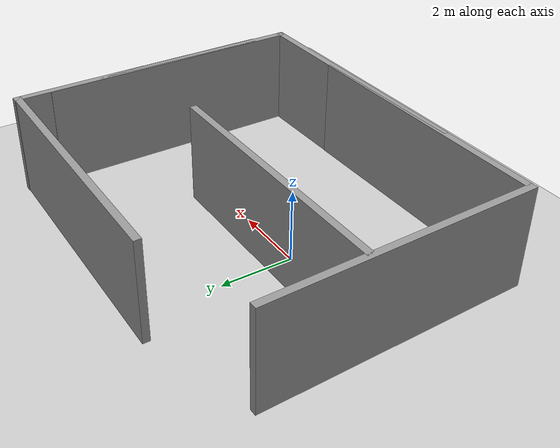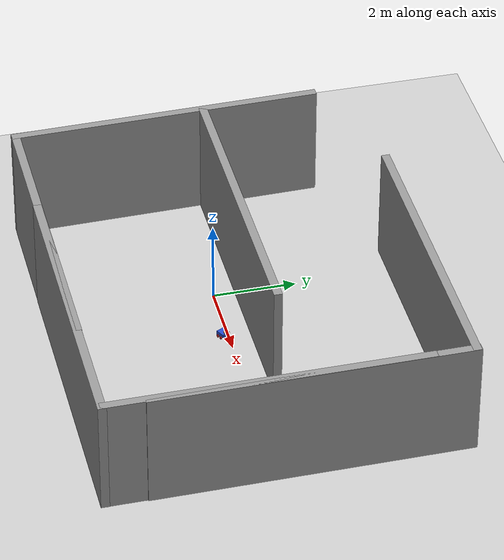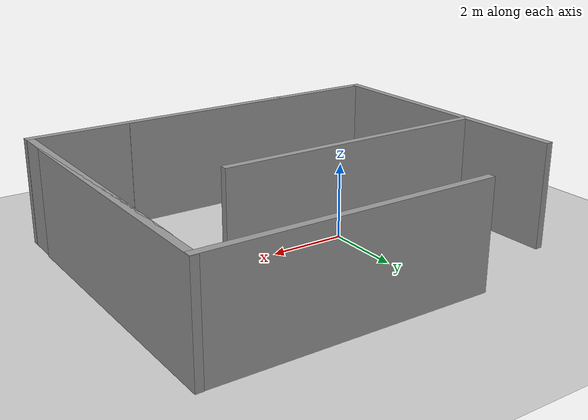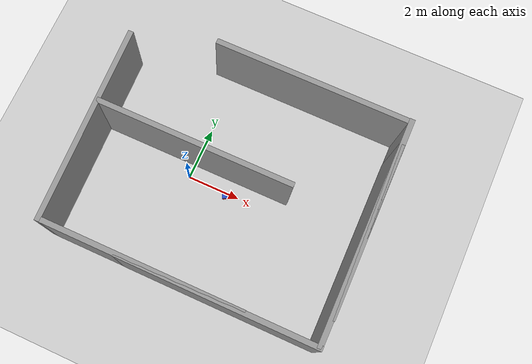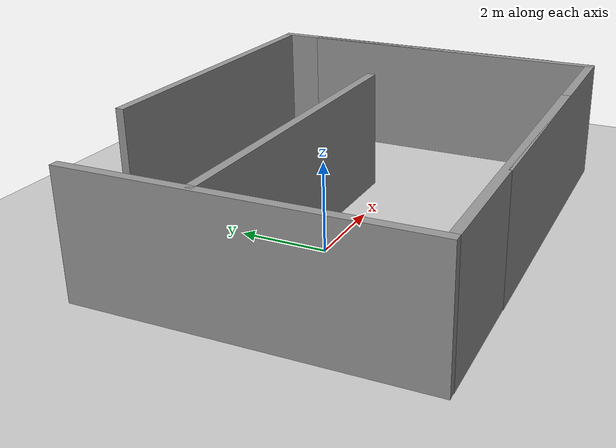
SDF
<sdf version="1.7">
 <world name="default">
  <light name="sun" type="directional">
   <pose>0 0 10 0 -0 0</pose>
   <diffuse>0.8 0.8 0.8 1</diffuse>
   <specular>0.2 0.2 0.2 1</specular>
   <attenuation>
    <range>1000</range>
    <constant>0.9</constant>
    <linear>0.01</linear>
    <quadratic>0.001</quadratic>
   </attenuation>
   <direction>-0.5 0.1 -0.9</direction>
   <spot><inner_angle>0</inner_angle><outer_angle>0</outer_angle><falloff>0</falloff></spot>
  </light>
  <model name="ground_plane">
   <static>1</static>
   <link name="link">
    <collision name="collision">
     <geometry><plane><normal>0 0 1</normal><size>100 100</size></plane></geometry>
     <surface>
      <contact><collide_bitmask>65535</collide_bitmask></contact>
      <friction><ode><mu>100</mu><mu2>50</mu2></ode></friction>
     </surface>
    </collision>
    <visual name="visual">
     <cast_shadows>0</cast_shadows>
     <geometry><plane><normal>0 0 1</normal><size>100 100</size></plane></geometry>
     <material>
      <script><uri>file://media/materials/scripts/gazebo.material</uri><name>Gazebo/Grey</name></script>
     </material>
    </visual>
   </link>
  </model>
  <gravity>0 0 -9.8</gravity>
  <magnetic_field>6e-06 2.3e-05 -4.2e-05</magnetic_field>
  <atmosphere type="adiabatic"/>
  <physics type="ode">
   <max_step_size>0.001</max_step_size>
   <real_time_factor>1</real_time_factor>
   <real_time_update_rate>1000</real_time_update_rate>
  </physics>
  <scene><ambient>0.4 0.4 0.4 1</ambient><background>0.7 0.7 0.7 1</background><shadows>1</shadows></scene>
  <audio><device>default</device></audio>
  <spherical_coordinates>
   <surface_model>EARTH_WGS84</surface_model>
   <latitude_deg>0</latitude_deg>
   <longitude_deg>0</longitude_deg>
   <elevation>0</elevation>
   <heading_deg>0</heading_deg>
  </spherical_coordinates>
  <model name="milo">
   <link name="base_link">
    <inertial>
     <pose>0.01 0 0.063333 0 -0 0</pose>
     <mass>0.6</mass>
     <inertia>
      <ixx>0.00268479</ixx>
      <ixy>0</ixy>
      <ixz>-0.000325</ixz>
      <iyy>0.00316396</iyy>
      <iyz>0</iyz>
      <izz>0.00421542</izz>
     </inertia>
    </inertial>
    <collision name="base_link_fixed_joint_lump__chassis_collision">
     <pose>0 0 0.0525 0 -0 0</pose>
     <geometry><box><size>0.22 0.21 0.105</size></box></geometry>
    </collision>
    <collision name="base_link_fixed_joint_lump__laser_frame_collision_1">
     <pose>0.06 0 0.1175 0 -0 0</pose>
     <geometry><cylinder><length>0.025</length><radius>0.035</radius></cylinder></geometry>
    </collision>
    <visual name="base_link_fixed_joint_lump__chassis_visual">
     <pose>0 0 0.0525 0 -0 0</pose>
     <geometry><box><size>0.22 0.21 0.105</size></box></geometry>
     <material>
      <script><name>Gazebo/Blue</name><uri>file://media/materials/scripts/gazebo.material</uri></script>
     </material>
    </visual>
    <visual name="base_link_fixed_joint_lump__camera_link_visual_1">
     <pose>0.115 0 0.0525 0 -0 0</pose>
     <geometry><box><size>0.01 0.025 0.025</size></box></geometry>
     <material>
      <script><name>Gazebo/Black</name><uri>file://media/materials/scripts/gazebo.material</uri></script>
     </material>
    </visual>
    <visual name="base_link_fixed_joint_lump__laser_frame_visual_2">
     <pose>0.06 0 0.1175 0 -0 0</pose>
     <geometry><cylinder><length>0.025</length><radius>0.035</radius></cylinder></geometry>
     <material>
      <script><name>Gazebo/Orange</name><uri>file://media/materials/scripts/gazebo.material</uri></script>
     </material>
    </visual>
    <sensor name="camera" type="camera">
     <visualize>0</visualize>
     <update_rate>10</update_rate>
     <camera>
      <horizontal_fov>2.094</horizontal_fov>
      <image><format>R8G8B8</format><width>4608</width><height>2592</height></image>
      <clip><near>0.05</near><far>8</far></clip>
     </camera>
     <plugin name="camera_controller" filename="libgazebo_ros_camera.so">
      <frame_name>camera_link_optical</frame_name>
     </plugin>
     <pose>0.115 0 0.0525 0 -0 0</pose>
    </sensor>
    <sensor name="laser" type="ray">
     <visualize>0</visualize>
     <update_rate>5.5</update_rate>
     <ray>
      <scan>
       <horizontal>
        <samples>360</samples>
        <min_angle>-3.14</min_angle>
        <max_angle>3.14</max_angle>
        <resolution>1</resolution>
       </horizontal>
       <vertical><samples>1</samples><min_angle>0</min_angle><max_angle>0</max_angle></vertical>
      </scan>
      <range><min>0.2</min><max>12</max></range>
     </ray>
     <plugin name="laser_controller" filename="libgazebo_ros_ray_sensor.so">
      <ros><remapping>~/out:=scan</remapping></ros>
      <output_type>sensor_msgs/LaserScan</output_type>
      <frame_name>laser_frame</frame_name>
     </plugin>
     <pose>0.06 0 0.1175 0 -0 0</pose>
    </sensor>
   </link>
   <joint name="left_front_wheel_joint" type="revolute">
    <pose relative_to="base_link">0.05 0.1175 0 -1.5708 0 0</pose>
    <parent>base_link</parent>
    <child>left_front_wheel</child>
    <axis>
     <xyz>0 0 1</xyz>
     <limit><lower>-1e+16</lower><upper>1e+16</upper></limit>
     <dynamics><spring_reference>0</spring_reference><spring_stiffness>0</spring_stiffness></dynamics>
    </axis>
   </joint>
   <link name="left_front_wheel">
    <pose relative_to="left_front_wheel_joint">0 0 0 0 -0 0</pose>
    <inertial>
     <mass>0.1</mass>
     <inertia><ixx>4.9e-05</ixx><ixy>0</ixy><ixz>0</ixz><iyy>4.9e-05</iyy><iyz>0</iyz><izz>4.9e-05</izz></inertia>
    </inertial>
    <collision name="left_front_wheel_collision">
     <geometry><sphere><radius>0.035</radius></sphere></geometry>
     <surface><friction><ode><mu>0.2</mu><mu2>0.2</mu2></ode></friction></surface>
    </collision>
    <visual name="left_front_wheel_visual">
     <geometry><cylinder><length>0.025</length><radius>0.035</radius></cylinder></geometry>
     <material>
      <script><name>Gazebo/Red</name><uri>file://media/materials/scripts/gazebo.material</uri></script>
     </material>
    </visual>
   </link>
   <joint name="left_rear_wheel_joint" type="revolute">
    <pose relative_to="base_link">-0.05 0.1175 0 -1.5708 0 0</pose>
    <parent>base_link</parent>
    <child>left_rear_wheel</child>
    <axis>
     <xyz>0 0 1</xyz>
     <limit><lower>-1e+16</lower><upper>1e+16</upper></limit>
     <dynamics><spring_reference>0</spring_reference><spring_stiffness>0</spring_stiffness></dynamics>
    </axis>
   </joint>
   <link name="left_rear_wheel">
    <pose relative_to="left_rear_wheel_joint">0 0 0 0 -0 0</pose>
    <inertial>
     <mass>0.1</mass>
     <inertia><ixx>4.9e-05</ixx><ixy>0</ixy><ixz>0</ixz><iyy>4.9e-05</iyy><iyz>0</iyz><izz>4.9e-05</izz></inertia>
    </inertial>
    <collision name="left_rear_wheel_collision">
     <geometry><sphere><radius>0.035</radius></sphere></geometry>
     <surface><friction><ode><mu>0.2</mu><mu2>0.2</mu2></ode></friction></surface>
    </collision>
    <visual name="left_rear_wheel_visual">
     <geometry><cylinder><length>0.025</length><radius>0.035</radius></cylinder></geometry>
     <material>
      <script><name>Gazebo/Red</name><uri>file://media/materials/scripts/gazebo.material</uri></script>
     </material>
    </visual>
   </link>
   <joint name="right_front_wheel_joint" type="revolute">
    <pose relative_to="base_link">0.05 -0.1175 0 1.5708 -0 0</pose>
    <parent>base_link</parent>
    <child>right_front_wheel</child>
    <axis>
     <xyz>0 0 -1</xyz>
     <limit><lower>-1e+16</lower><upper>1e+16</upper></limit>
     <dynamics><spring_reference>0</spring_reference><spring_stiffness>0</spring_stiffness></dynamics>
    </axis>
   </joint>
   <link name="right_front_wheel">
    <pose relative_to="right_front_wheel_joint">0 0 0 0 -0 0</pose>
    <inertial>
     <mass>0.1</mass>
     <inertia><ixx>4.9e-05</ixx><ixy>0</ixy><ixz>0</ixz><iyy>4.9e-05</iyy><iyz>0</iyz><izz>4.9e-05</izz></inertia>
    </inertial>
    <collision name="right_front_wheel_collision">
     <geometry><sphere><radius>0.035</radius></sphere></geometry>
     <surface><friction><ode><mu>0.2</mu><mu2>0.2</mu2></ode></friction></surface>
    </collision>
    <visual name="right_front_wheel_visual">
     <geometry><cylinder><length>0.025</length><radius>0.035</radius></cylinder></geometry>
     <material>
      <script><name>Gazebo/Red</name><uri>file://media/materials/scripts/gazebo.material</uri></script>
     </material>
    </visual>
   </link>
   <joint name="right_rear_wheel_joint" type="revolute">
    <pose relative_to="base_link">-0.05 -0.1175 0 1.5708 -0 0</pose>
    <parent>base_link</parent>
    <child>right_rear_wheel</child>
    <axis>
     <xyz>0 0 -1</xyz>
     <limit><lower>-1e+16</lower><upper>1e+16</upper></limit>
     <dynamics><spring_reference>0</spring_reference><spring_stiffness>0</spring_stiffness></dynamics>
    </axis>
   </joint>
   <link name="right_rear_wheel">
    <pose relative_to="right_rear_wheel_joint">0 0 0 0 -0 0</pose>
    <inertial>
     <mass>0.1</mass>
     <inertia><ixx>4.9e-05</ixx><ixy>0</ixy><ixz>0</ixz><iyy>4.9e-05</iyy><iyz>0</iyz><izz>4.9e-05</izz></inertia>
    </inertial>
    <collision name="right_rear_wheel_collision">
     <geometry><sphere><radius>0.035</radius></sphere></geometry>
     <surface><friction><ode><mu>0.2</mu><mu2>0.2</mu2></ode></friction></surface>
    </collision>
    <visual name="right_rear_wheel_visual">
     <geometry><cylinder><length>0.025</length><radius>0.035</radius></cylinder></geometry>
     <material>
      <script><name>Gazebo/Red</name><uri>file://media/materials/scripts/gazebo.material</uri></script>
     </material>
    </visual>
   </link>
   <static>0</static>
   <plugin name="gazebo_ros2_control" filename="libgazebo_ros2_control.so">
    <parameters>/root/milo_ws/install/milo_description/share/milo_description/config/my_controllers.yaml</parameters>
   </plugin>
   <pose>1.52442 -0.118842 0.035 -1e-06 -1e-06 0.47765</pose>
  </model>
  <model name="grey_wall">
   <static>1</static>
   <link name="link">
    <pose>0 0 1.4 0 -0 0</pose>
    <collision name="collision"><geometry><box><size>7.5 0.2 2.8</size></box></geometry></collision>
    <visual name="visual">
     <cast_shadows>0</cast_shadows>
     <geometry><box><size>7.5 0.2 2.8</size></box></geometry>
     <material>
      <script>
       <uri>model://grey_wall/materials/scripts</uri>
       <uri>model://grey_wall/materials/textures</uri>
       <name>vrc/grey_wall</name>
      </script>
     </material>
    </visual>
   </link>
   <pose>-3.68136 -0.318219 0 0 0 -1.5483</pose>
  </model>
  <model name="grey_wall_0">
   <static>1</static>
   <link name="link">
    <pose>0 0 1.4 0 -0 0</pose>
    <collision name="collision"><geometry><box><size>7.5 0.2 2.8</size></box></geometry></collision>
    <visual name="visual">
     <cast_shadows>0</cast_shadows>
     <geometry><box><size>7.5 0.2 2.8</size></box></geometry>
     <material>
      <script>
       <uri>model://grey_wall/materials/scripts</uri>
       <uri>model://grey_wall/materials/textures</uri>
       <name>vrc/grey_wall</name>
      </script>
     </material>
    </visual>
   </link>
   <pose>0.232875 -3.97265 0 0 -0 0</pose>
  </model>
  <model name="grey_wall_1">
   <static>1</static>
   <link name="link">
    <pose>0 0 1.4 0 -0 0</pose>
    <collision name="collision"><geometry><box><size>7.5 0.2 2.8</size></box></geometry></collision>
    <visual name="visual">
     <cast_shadows>0</cast_shadows>
     <geometry><box><size>7.5 0.2 2.8</size></box></geometry>
     <material>
      <script>
       <uri>model://grey_wall/materials/scripts</uri>
       <uri>model://grey_wall/materials/textures</uri>
       <name>vrc/grey_wall</name>
      </script>
     </material>
    </visual>
   </link>
   <pose>0.021685 0.615781 0 0 -0 0</pose>
  </model>
  <model name="grey_wall_2">
   <static>1</static>
   <link name="link">
    <pose>0 0 1.4 0 -0 0</pose>
    <collision name="collision"><geometry><box><size>7.5 0.2 2.8</size></box></geometry></collision>
    <visual name="visual">
     <cast_shadows>0</cast_shadows>
     <geometry><box><size>7.5 0.2 2.8</size></box></geometry>
     <material>
      <script>
       <uri>model://grey_wall/materials/scripts</uri>
       <uri>model://grey_wall/materials/textures</uri>
       <name>vrc/grey_wall</name>
      </script>
     </material>
    </visual>
   </link>
   <pose>2.92994 4.36143 0 0 -0 0</pose>
  </model>
  <model name="grey_wall_3">
   <static>1</static>
   <link name="link">
    <pose>0 0 1.4 0 -0 0</pose>
    <collision name="collision"><geometry><box><size>7.5 0.2 2.8</size></box></geometry></collision>
    <visual name="visual">
     <cast_shadows>0</cast_shadows>
     <geometry><box><size>7.5 0.2 2.8</size></box></geometry>
     <material>
      <script>
       <uri>model://grey_wall/materials/scripts</uri>
       <uri>model://grey_wall/materials/textures</uri>
       <name>vrc/grey_wall</name>
      </script>
     </material>
    </visual>
   </link>
   <pose>6.60384 -0.274584 0 0 -0 1.5755</pose>
  </model>
  <model name="grey_wall_4">
   <static>1</static>
   <link name="link">
    <pose>0 0 1.4 0 -0 0</pose>
    <collision name="collision"><geometry><box><size>7.5 0.2 2.8</size></box></geometry></collision>
    <visual name="visual">
     <cast_shadows>0</cast_shadows>
     <geometry><box><size>7.5 0.2 2.8</size></box></geometry>
     <material>
      <script>
       <uri>model://grey_wall/materials/scripts</uri>
       <uri>model://grey_wall/materials/textures</uri>
       <name>vrc/grey_wall</name>
      </script>
     </material>
    </visual>
   </link>
   <pose>2.97704 -3.98133 0 0 -0 0</pose>
  </model>
  <model name="grey_wall_5">
   <static>1</static>
   <link name="link">
    <pose>0 0 1.4 0 -0 0</pose>
    <collision name="collision"><geometry><box><size>7.5 0.2 2.8</size></box></geometry></collision>
    <visual name="visual">
     <cast_shadows>0</cast_shadows>
     <geometry><box><size>7.5 0.2 2.8</size></box></geometry>
     <material>
      <script>
       <uri>model://grey_wall/materials/scripts</uri>
       <uri>model://grey_wall/materials/textures</uri>
       <name>vrc/grey_wall</name>
      </script>
     </material>
    </visual>
   </link>
   <pose>6.61575 0.7244 0 0 -0 1.57798</pose>
  </model>
 </world>
</sdf>
